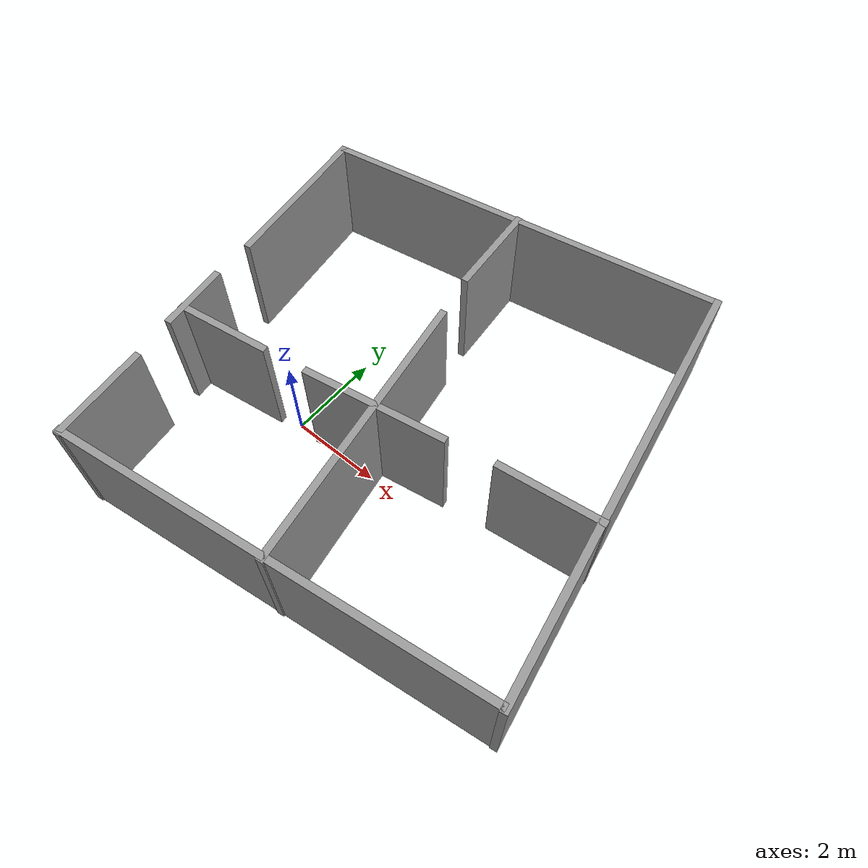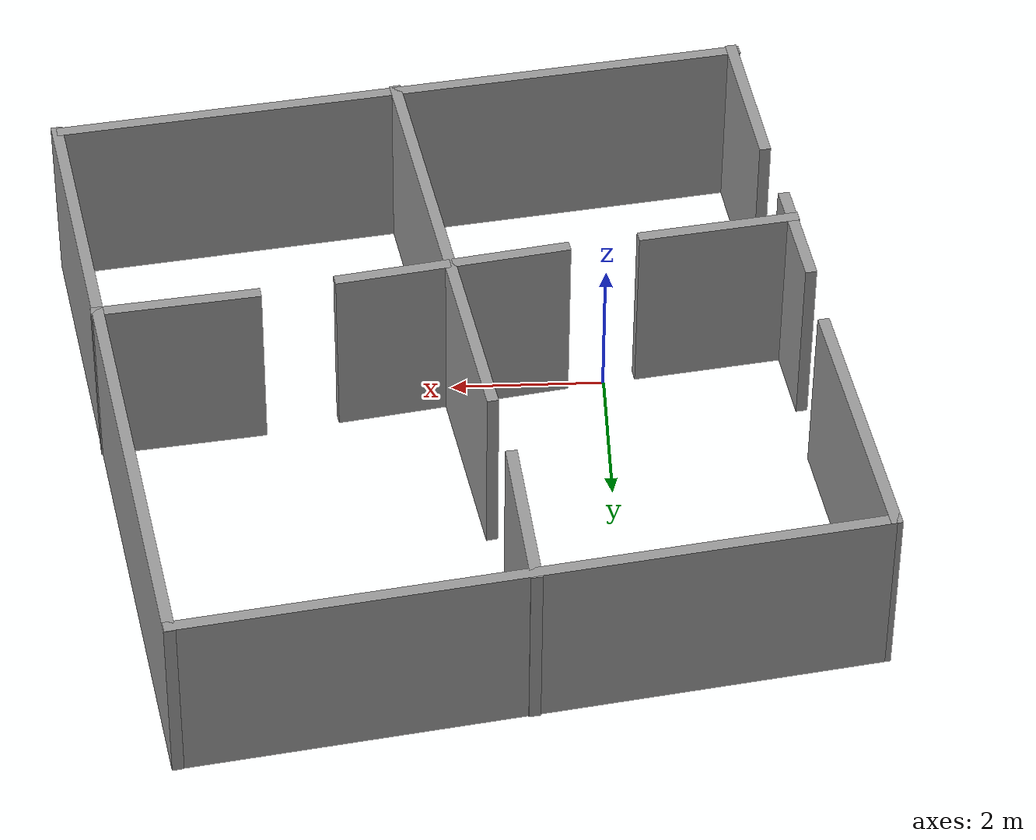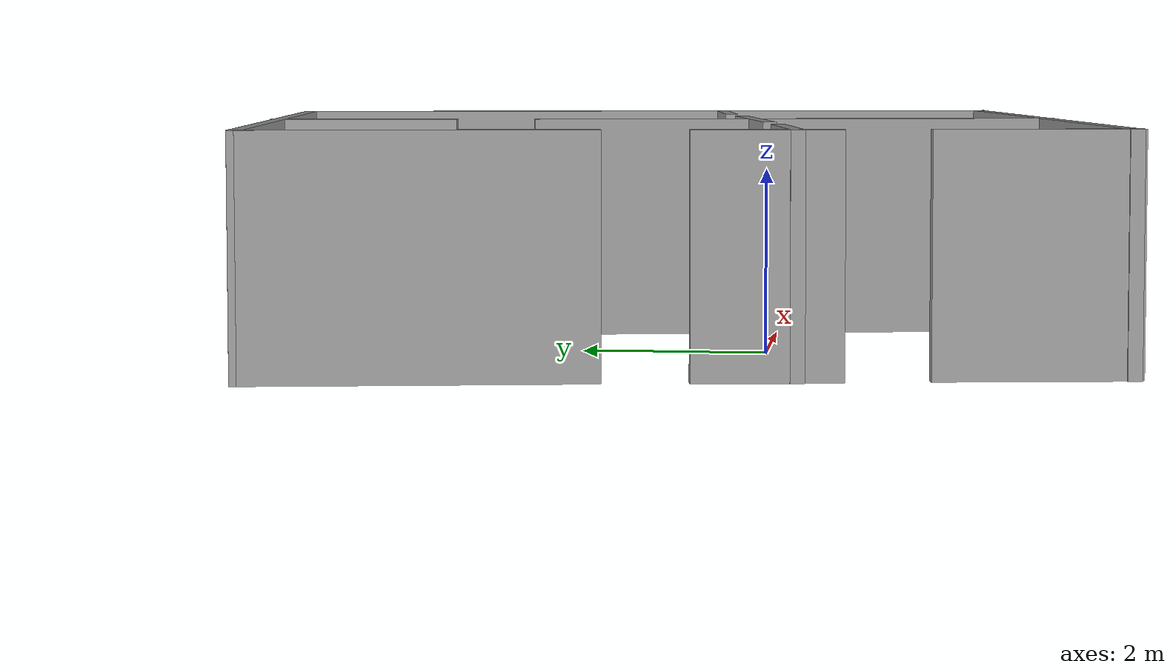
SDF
<?xml version='1.0'?>
<sdf version='1.7'>
  <model name='arena_bordeaux'>
    <pose>1.95389 1.3187 0 0 -0 0</pose>
    <link name='Wall_11'>
      <collision name='Wall_11_Collision'>
        <geometry>
          <box>
            <size>1.5285 0.15 2.5</size>
          </box>
        </geometry>
        <pose>0 0 1.25 0 -0 0</pose>
      </collision>
      <visual name='Wall_11_Visual'>
        <pose>0 0 1.25 0 -0 0</pose>
        <geometry>
          <box>
            <size>1.5285 0.15 2.5</size>
          </box>
        </geometry>
        <material>
          <script>
            <uri>file://media/materials/scripts/gazebo.material</uri>
            <name>Gazebo/Grey</name>
          </script>
          <ambient>1 1 1 1</ambient>
        </material>
        <meta>
          <layer>0</layer>
        </meta>
      </visual>
      <pose>-4.41201 -1.46555 0 0 -0 -1.42563</pose>
    </link>
    <link name='Wall_14'>
      <collision name='Wall_14_Collision'>
        <geometry>
          <box>
            <size>2.11764 0.15 2.5</size>
          </box>
        </geometry>
        <pose>0 0 1.25 0 -0 0</pose>
      </collision>
      <visual name='Wall_14_Visual'>
        <pose>0 0 1.25 0 -0 0</pose>
        <geometry>
          <box>
            <size>2.11764 0.15 2.5</size>
          </box>
        </geometry>
        <material>
          <script>
            <uri>file://media/materials/scripts/gazebo.material</uri>
            <name>Gazebo/Grey</name>
          </script>
          <ambient>1 1 1 1</ambient>
        </material>
        <meta>
          <layer>0</layer>
        </meta>
      </visual>
      <pose>-3.40679 -1.61426 0 0 -0 0.148348</pose>
    </link>
    <link name='Wall_19'>
      <collision name='Wall_19_Collision'>
        <geometry>
          <box>
            <size>3.07472 0.15 2.5</size>
          </box>
        </geometry>
        <pose>0 0 1.25 0 -0 0</pose>
      </collision>
      <visual name='Wall_19_Visual'>
        <pose>0 0 1.25 0 -0 0</pose>
        <geometry>
          <box>
            <size>3.07472 0.15 2.5</size>
          </box>
        </geometry>
        <material>
          <script>
            <uri>file://media/materials/scripts/gazebo.material</uri>
            <name>Gazebo/Grey</name>
          </script>
          <ambient>1 1 1 1</ambient>
        </material>
        <meta>
          <layer>0</layer>
        </meta>
      </visual>
      <pose>0.043397 -1.06091 0 0 -0 0.171137</pose>
    </link>
    <link name='Wall_25'>
      <collision name='Wall_25_Collision'>
        <geometry>
          <box>
            <size>2.15541 0.15 2.5</size>
          </box>
        </geometry>
        <pose>0 0 1.25 0 -0 0</pose>
      </collision>
      <visual name='Wall_25_Visual'>
        <pose>0 0 1.25 0 -0 0</pose>
        <geometry>
          <box>
            <size>2.15541 0.15 2.5</size>
          </box>
        </geometry>
        <material>
          <script>
            <uri>file://media/materials/scripts/gazebo.material</uri>
            <name>Gazebo/Grey</name>
          </script>
          <ambient>1 1 1 1</ambient>
        </material>
        <meta>
          <layer>0</layer>
        </meta>
      </visual>
      <pose>-0.651905 3.40599 0 0 -0 -1.47367</pose>
    </link>
    <link name='Wall_29'>
      <collision name='Wall_29_Collision'>
        <geometry>
          <box>
            <size>6.07959 0.15 2.5</size>
          </box>
        </geometry>
        <pose>0 0 1.25 0 -0 0</pose>
      </collision>
      <visual name='Wall_29_Visual'>
        <pose>0 0 1.25 0 -0 0</pose>
        <geometry>
          <box>
            <size>6.07959 0.15 2.5</size>
          </box>
        </geometry>
        <material>
          <script>
            <uri>file://media/materials/scripts/gazebo.material</uri>
            <name>Gazebo/Grey</name>
          </script>
          <ambient>1 1 1 1</ambient>
        </material>
        <meta>
          <layer>0</layer>
        </meta>
      </visual>
      <pose>0.160007 -1.53357 0 0 -0 1.74315</pose>
    </link>
    <link name='Wall_34'>
      <collision name='Wall_34_Collision'>
        <geometry>
          <box>
            <size>9.17623 0.15 2.5</size>
          </box>
        </geometry>
        <pose>0 0 1.25 0 -0 0</pose>
      </collision>
      <visual name='Wall_34_Visual'>
        <pose>0 0 1.25 0 -0 0</pose>
        <geometry>
          <box>
            <size>9.17623 0.15 2.5</size>
          </box>
        </geometry>
        <material>
          <script>
            <uri>file://media/materials/scripts/gazebo.material</uri>
            <name>Gazebo/Grey</name>
          </script>
          <ambient>1 1 1 1</ambient>
        </material>
        <meta>
          <layer>0</layer>
        </meta>
      </visual>
      <pose>4.39763 0.65054 0 0 -0 -1.40388</pose>
    </link>
    <link name='Wall_37'>
      <collision name='Wall_37_Collision'>
        <geometry>
          <box>
            <size>2.1237 0.15 2.5</size>
          </box>
        </geometry>
        <pose>0 0 1.25 0 -0 0</pose>
      </collision>
      <visual name='Wall_37_Visual'>
        <pose>0 0 1.25 0 -0 0</pose>
        <geometry>
          <box>
            <size>2.1237 0.15 2.5</size>
          </box>
        </geometry>
        <material>
          <script>
            <uri>file://media/materials/scripts/gazebo.material</uri>
            <name>Gazebo/Grey</name>
          </script>
          <ambient>1 1 1 1</ambient>
        </material>
        <meta>
          <layer>0</layer>
        </meta>
      </visual>
      <pose>-3.99066 -4.12515 0 0 -0 -1.43461</pose>
    </link>
    <link name='Wall_42'>
      <collision name='Wall_42_Collision'>
        <geometry>
          <box>
            <size>9.20213 0.15 2.5</size>
          </box>
        </geometry>
        <pose>0 0 1.25 0 -0 0</pose>
      </collision>
      <visual name='Wall_42_Visual'>
        <pose>0 0 1.25 0 -0 0</pose>
        <geometry>
          <box>
            <size>9.20213 0.15 2.5</size>
          </box>
        </geometry>
        <material>
          <script>
            <uri>file://media/materials/scripts/gazebo.material</uri>
            <name>Gazebo/Grey</name>
          </script>
          <ambient>1 1 1 1</ambient>
        </material>
        <meta>
          <layer>0</layer>
        </meta>
      </visual>
      <pose>0.598295 -4.43584 0 0 -0 0.143301</pose>
    </link>
    <link name='Wall_49'>
      <collision name='Wall_49_Collision'>
        <geometry>
          <box>
            <size>2.17052 0.15 2.5</size>
          </box>
        </geometry>
        <pose>0 0 1.25 0 -0 0</pose>
      </collision>
      <visual name='Wall_49_Visual'>
        <pose>0 0 1.25 0 -0 0</pose>
        <geometry>
          <box>
            <size>2.17052 0.15 2.5</size>
          </box>
        </geometry>
        <material>
          <script>
            <uri>file://media/materials/scripts/gazebo.material</uri>
            <name>Gazebo/Grey</name>
          </script>
          <ambient>1 1 1 1</ambient>
        </material>
        <meta>
          <layer>0</layer>
        </meta>
      </visual>
      <pose>3.57644 -0.473452 0 0 -0 0.129132</pose>
    </link>
    <link name='Wall_5'>
      <collision name='Wall_5_Collision'>
        <geometry>
          <box>
            <size>3.63592 0.15 2.5</size>
          </box>
        </geometry>
        <pose>0 0 1.25 0 -0 0</pose>
      </collision>
      <visual name='Wall_5_Visual'>
        <pose>0 0 1.25 0 -0 0</pose>
        <geometry>
          <box>
            <size>3.63592 0.15 2.5</size>
          </box>
        </geometry>
        <material>
          <script>
            <uri>file://media/materials/scripts/gazebo.material</uri>
            <name>Gazebo/Grey</name>
          </script>
          <ambient>1 1 1 1</ambient>
        </material>
        <meta>
          <layer>0</layer>
        </meta>
      </visual>
      <pose>-4.87839 1.9533 0 0 -0 1.72604</pose>
    </link>
    <link name='Wall_8'>
      <collision name='Wall_8_Collision'>
        <geometry>
          <box>
            <size>9.05052 0.15 2.5</size>
          </box>
        </geometry>
        <pose>0 0 1.25 0 -0 0</pose>
      </collision>
      <visual name='Wall_8_Visual'>
        <pose>0 0 1.25 0 -0 0</pose>
        <geometry>
          <box>
            <size>9.05052 0.15 2.5</size>
          </box>
        </geometry>
        <material>
          <script>
            <uri>file://media/materials/scripts/gazebo.material</uri>
            <name>Gazebo/Grey</name>
          </script>
          <ambient>1 1 1 1</ambient>
        </material>
        <meta>
          <layer>0</layer>
        </meta>
      </visual>
      <pose>-0.754382 4.38377 0 0 -0 0.159877</pose>
    </link>
    <static>1</static>
  </model>
</sdf>
